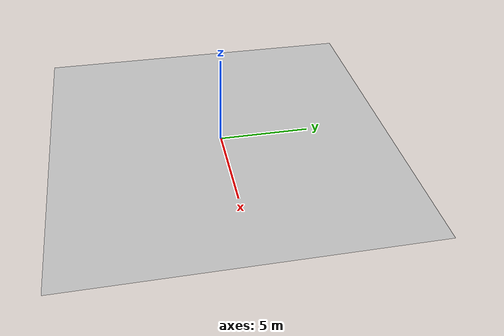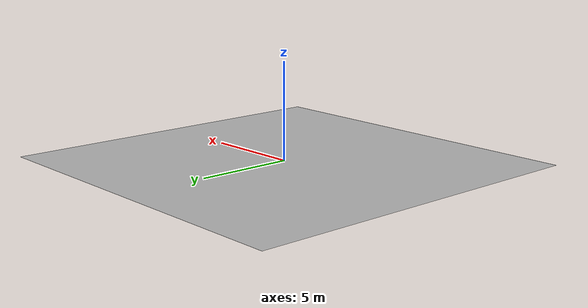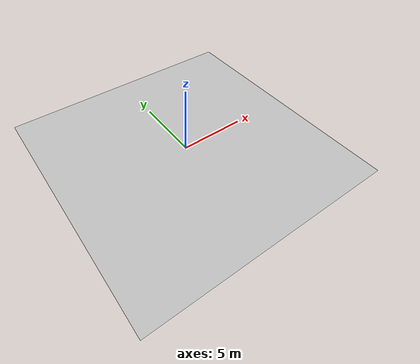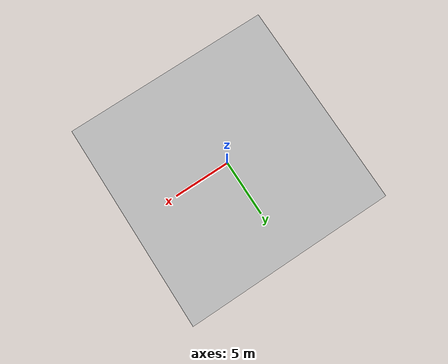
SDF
<?xml version="1.0" ?>
<sdf version="1.8">
  <world name="funcional">
    <physics name="1ms" type="ignored">
      <max_step_size>0.001</max_step_size>
      <real_time_factor>1.0</real_time_factor>
    </physics>
    <plugin
      filename="gz-sim-physics-system"
      name="gz::sim::systems::Physics">
    </plugin>
    <plugin
      filename="gz-sim-user-commands-system"
      name="gz::sim::systems::UserCommands">
    </plugin>
    <plugin
      filename="gz-sim-scene-broadcaster-system"
      name="gz::sim::systems::SceneBroadcaster">
    </plugin>

    <!--light-->
    <light type="directional" name="sun">
      <cast_shadows>true</cast_shadows>
      <pose>0 0 10 0 0 0</pose>
      <diffuse>0.8 0.8 0.8 1</diffuse>
      <specular>0.2 0.2 0.2 1</specular>
      <attenuation>
        <range>1000</range>
        <constant>0.9</constant>
        <linear>0.01</linear>
        <quadratic>0.001</quadratic>
      </attenuation>
      <direction>-0.5 0.1 -0.9</direction>
    </light>

  <model name="terreno">
    <pose>0 0 0 0 0 0</pose>
    <static>true</static>
    <link name="body">
      <visual name="visual">
        <geometry>
          <mesh><uri>model://blenders/terreno/terreno.obj</uri></mesh>
        </geometry>
      </visual>
      <collision name="collision">
        <geometry>
          <mesh><uri>model://blenders/terreno/terreno.obj</uri></mesh>
        </geometry>
      </collision>
    </link>
  </model>
  </world>
</sdf>
